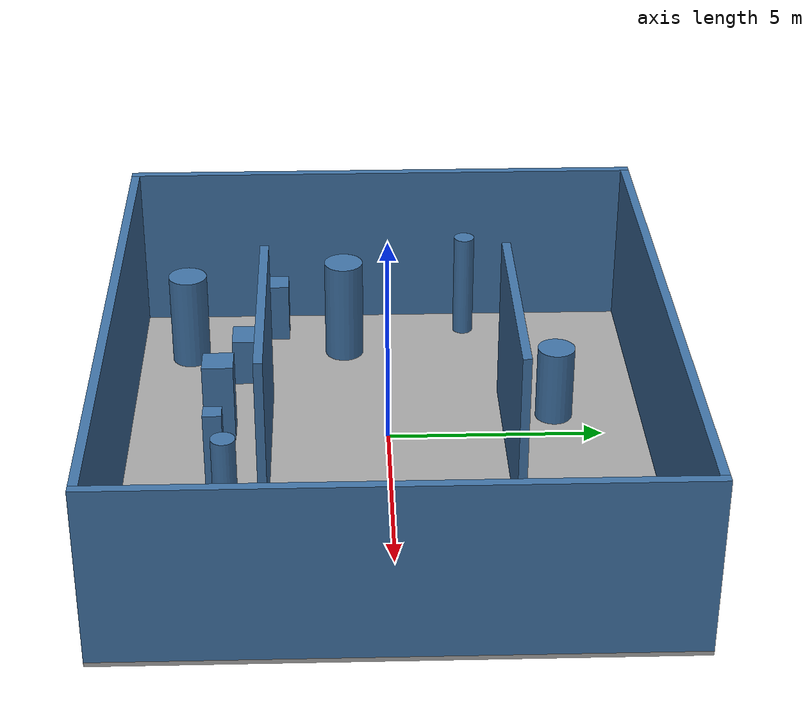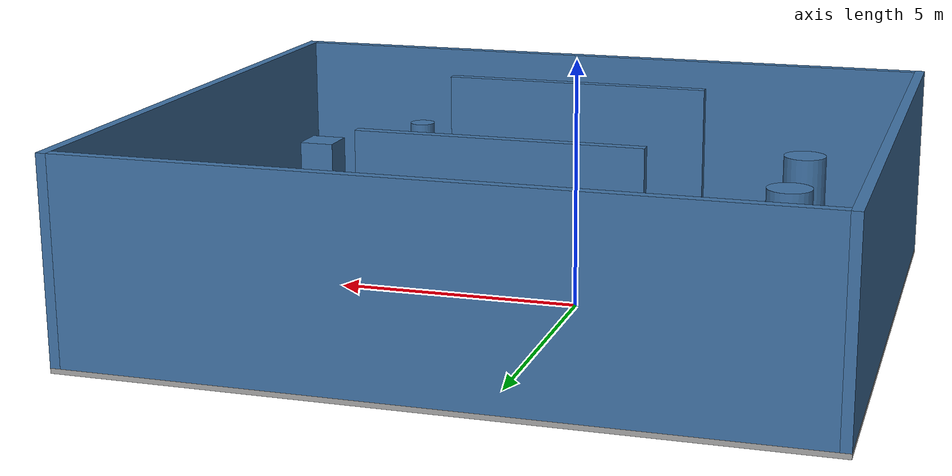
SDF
<?xml version="1.0" encoding="utf-8"?>
<sdf version="1.6">
  <world name="default">
    <gravity>0 0 -9.8</gravity>
    <magnetic_field>6e-06 2.3e-05 -4.2e-05</magnetic_field>
    <physics name="default_physics" type="ode">
      <max_step_size>.001</max_step_size>
      <real_time_factor>1</real_time_factor>
      <real_time_update_rate>1000</real_time_update_rate>
    </physics>
    <scene>
      <ambient>.5 .5 .5 1</ambient>
      <background>.7 .7 .7 1</background>
      <shadows>false</shadows>
    </scene>
    <light name="sun" type="directional">
      <pose>0 0 10 0 0 0</pose>
      <diffuse>.8 .8 .8 1</diffuse>
      <direction>-.2 .1 -1</direction>
    </light>
    <model name="arena_floor">
      <static>true</static>
      <pose>1.000000 0.000000 -0.050000 0.000000 0.000000 0.000000</pose>
      <link name="body">
        <collision name="collision">
          <geometry>
            <box>
              <size>14.400000 12.400000 0.100000</size>
            </box>
          </geometry>
        </collision>
        <visual name="visual">
          <geometry>
            <box>
              <size>14.400000 12.400000 0.100000</size>
            </box>
          </geometry>
          <material>
            <ambient>.65 .65 .65 1</ambient>
            <diffuse>.65 .65 .65 1</diffuse>
          </material>
        </visual>
      </link>
    </model>
    <model name="boundary_west">
      <static>true</static>
      <pose>-6.100000 0.000000 2.000000 0.000000 0.000000 0.000000</pose>
      <link name="body">
        <collision name="collision">
          <geometry>
            <box>
              <size>0.200000 12.400000 4.000000</size>
            </box>
          </geometry>
        </collision>
        <visual name="visual">
          <geometry>
            <box>
              <size>0.200000 12.400000 4.000000</size>
            </box>
          </geometry>
          <material>
            <ambient>.25 .45 .65 1</ambient>
            <diffuse>.25 .45 .65 1</diffuse>
          </material>
        </visual>
      </link>
    </model>
    <model name="boundary_east">
      <static>true</static>
      <pose>8.100000 0.000000 2.000000 0.000000 0.000000 0.000000</pose>
      <link name="body">
        <collision name="collision">
          <geometry>
            <box>
              <size>0.200000 12.400000 4.000000</size>
            </box>
          </geometry>
        </collision>
        <visual name="visual">
          <geometry>
            <box>
              <size>0.200000 12.400000 4.000000</size>
            </box>
          </geometry>
          <material>
            <ambient>.25 .45 .65 1</ambient>
            <diffuse>.25 .45 .65 1</diffuse>
          </material>
        </visual>
      </link>
    </model>
    <model name="boundary_south">
      <static>true</static>
      <pose>1.000000 -6.100000 2.000000 0.000000 0.000000 0.000000</pose>
      <link name="body">
        <collision name="collision">
          <geometry>
            <box>
              <size>14.000000 0.200000 4.000000</size>
            </box>
          </geometry>
        </collision>
        <visual name="visual">
          <geometry>
            <box>
              <size>14.000000 0.200000 4.000000</size>
            </box>
          </geometry>
          <material>
            <ambient>.25 .45 .65 1</ambient>
            <diffuse>.25 .45 .65 1</diffuse>
          </material>
        </visual>
      </link>
    </model>
    <model name="boundary_north">
      <static>true</static>
      <pose>1.000000 6.100000 2.000000 0.000000 0.000000 0.000000</pose>
      <link name="body">
        <collision name="collision">
          <geometry>
            <box>
              <size>14.000000 0.200000 4.000000</size>
            </box>
          </geometry>
        </collision>
        <visual name="visual">
          <geometry>
            <box>
              <size>14.000000 0.200000 4.000000</size>
            </box>
          </geometry>
          <material>
            <ambient>.25 .45 .65 1</ambient>
            <diffuse>.25 .45 .65 1</diffuse>
          </material>
        </visual>
      </link>
    </model>
    <model name="corridor_south">
      <static>true</static>
      <pose>0.750000 -2.800000 2.000000 0.000000 0.000000 0.000000</pose>
      <link name="body">
        <collision name="collision">
          <geometry>
            <box>
              <size>5.500000 0.200000 4.000000</size>
            </box>
          </geometry>
        </collision>
        <visual name="visual">
          <geometry>
            <box>
              <size>5.500000 0.200000 4.000000</size>
            </box>
          </geometry>
          <material>
            <ambient>.25 .45 .65 1</ambient>
            <diffuse>.25 .45 .65 1</diffuse>
          </material>
        </visual>
      </link>
    </model>
    <model name="corridor_north">
      <static>true</static>
      <pose>0.750000 2.800000 2.000000 0.000000 0.000000 0.000000</pose>
      <link name="body">
        <collision name="collision">
          <geometry>
            <box>
              <size>5.500000 0.200000 4.000000</size>
            </box>
          </geometry>
        </collision>
        <visual name="visual">
          <geometry>
            <box>
              <size>5.500000 0.200000 4.000000</size>
            </box>
          </geometry>
          <material>
            <ambient>.25 .45 .65 1</ambient>
            <diffuse>.25 .45 .65 1</diffuse>
          </material>
        </visual>
      </link>
    </model>
    <model name="obstacle_000">
      <static>true</static>
      <pose>5.739000 -0.306000 0.643500 0.000000 0.000000 0.000000</pose>
      <link name="body">
        <collision name="collision">
          <geometry>
            <cylinder>
              <radius>0.227500</radius>
              <length>1.287000</length>
            </cylinder>
          </geometry>
        </collision>
        <visual name="visual">
          <geometry>
            <cylinder>
              <radius>0.227500</radius>
              <length>1.287000</length>
            </cylinder>
          </geometry>
          <material>
            <ambient>.25 .45 .65 1</ambient>
            <diffuse>.25 .45 .65 1</diffuse>
          </material>
        </visual>
      </link>
    </model>
    <model name="obstacle_001">
      <static>true</static>
      <pose>-5.052000 -2.666000 0.740000 0.000000 0.000000 0.000000</pose>
      <link name="body">
        <collision name="collision">
          <geometry>
            <box>
              <size>0.622000 0.622000 1.480000</size>
            </box>
          </geometry>
        </collision>
        <visual name="visual">
          <geometry>
            <box>
              <size>0.622000 0.622000 1.480000</size>
            </box>
          </geometry>
          <material>
            <ambient>.25 .45 .65 1</ambient>
            <diffuse>.25 .45 .65 1</diffuse>
          </material>
        </visual>
      </link>
    </model>
    <model name="obstacle_002">
      <static>true</static>
      <pose>1.861000 -3.919000 0.934500 0.000000 0.000000 0.000000</pose>
      <link name="body">
        <collision name="collision">
          <geometry>
            <box>
              <size>0.422000 0.422000 1.869000</size>
            </box>
          </geometry>
        </collision>
        <visual name="visual">
          <geometry>
            <box>
              <size>0.422000 0.422000 1.869000</size>
            </box>
          </geometry>
          <material>
            <ambient>.25 .45 .65 1</ambient>
            <diffuse>.25 .45 .65 1</diffuse>
          </material>
        </visual>
      </link>
    </model>
    <model name="obstacle_003">
      <static>true</static>
      <pose>6.995000 -3.859000 1.073500 0.000000 0.000000 0.000000</pose>
      <link name="body">
        <collision name="collision">
          <geometry>
            <box>
              <size>0.758000 0.758000 2.147000</size>
            </box>
          </geometry>
        </collision>
        <visual name="visual">
          <geometry>
            <box>
              <size>0.758000 0.758000 2.147000</size>
            </box>
          </geometry>
          <material>
            <ambient>.25 .45 .65 1</ambient>
            <diffuse>.25 .45 .65 1</diffuse>
          </material>
        </visual>
      </link>
    </model>
    <model name="obstacle_004">
      <static>true</static>
      <pose>-5.172000 2.054000 1.300500 0.000000 0.000000 0.000000</pose>
      <link name="body">
        <collision name="collision">
          <geometry>
            <cylinder>
              <radius>0.249000</radius>
              <length>2.601000</length>
            </cylinder>
          </geometry>
        </collision>
        <visual name="visual">
          <geometry>
            <cylinder>
              <radius>0.249000</radius>
              <length>2.601000</length>
            </cylinder>
          </geometry>
          <material>
            <ambient>.25 .45 .65 1</ambient>
            <diffuse>.25 .45 .65 1</diffuse>
          </material>
        </visual>
      </link>
    </model>
    <model name="obstacle_005">
      <static>true</static>
      <pose>4.453000 -3.531000 1.388000 0.000000 0.000000 0.000000</pose>
      <link name="body">
        <collision name="collision">
          <geometry>
            <cylinder>
              <radius>0.262000</radius>
              <length>2.776000</length>
            </cylinder>
          </geometry>
        </collision>
        <visual name="visual">
          <geometry>
            <cylinder>
              <radius>0.262000</radius>
              <length>2.776000</length>
            </cylinder>
          </geometry>
          <material>
            <ambient>.25 .45 .65 1</ambient>
            <diffuse>.25 .45 .65 1</diffuse>
          </material>
        </visual>
      </link>
    </model>
    <model name="obstacle_006">
      <static>true</static>
      <pose>-0.855000 3.952000 0.909500 0.000000 0.000000 0.000000</pose>
      <link name="body">
        <collision name="collision">
          <geometry>
            <cylinder>
              <radius>0.437000</radius>
              <length>1.819000</length>
            </cylinder>
          </geometry>
        </collision>
        <visual name="visual">
          <geometry>
            <cylinder>
              <radius>0.437000</radius>
              <length>1.819000</length>
            </cylinder>
          </geometry>
          <material>
            <ambient>.25 .45 .65 1</ambient>
            <diffuse>.25 .45 .65 1</diffuse>
          </material>
        </visual>
      </link>
    </model>
    <model name="obstacle_007">
      <static>true</static>
      <pose>-3.863000 -4.777000 1.140000 0.000000 0.000000 0.000000</pose>
      <link name="body">
        <collision name="collision">
          <geometry>
            <cylinder>
              <radius>0.462500</radius>
              <length>2.280000</length>
            </cylinder>
          </geometry>
        </collision>
        <visual name="visual">
          <geometry>
            <cylinder>
              <radius>0.462500</radius>
              <length>2.280000</length>
            </cylinder>
          </geometry>
          <material>
            <ambient>.25 .45 .65 1</ambient>
            <diffuse>.25 .45 .65 1</diffuse>
          </material>
        </visual>
      </link>
    </model>
    <model name="obstacle_008">
      <static>true</static>
      <pose>5.732000 4.414000 0.570000 0.000000 0.000000 0.000000</pose>
      <link name="body">
        <collision name="collision">
          <geometry>
            <box>
              <size>0.997000 0.997000 1.140000</size>
            </box>
          </geometry>
        </collision>
        <visual name="visual">
          <geometry>
            <box>
              <size>0.997000 0.997000 1.140000</size>
            </box>
          </geometry>
          <material>
            <ambient>.25 .45 .65 1</ambient>
            <diffuse>.25 .45 .65 1</diffuse>
          </material>
        </visual>
      </link>
    </model>
    <model name="obstacle_009">
      <static>true</static>
      <pose>-2.933000 -3.287000 0.577000 0.000000 0.000000 0.000000</pose>
      <link name="body">
        <collision name="collision">
          <geometry>
            <box>
              <size>0.805000 0.805000 1.154000</size>
            </box>
          </geometry>
        </collision>
        <visual name="visual">
          <geometry>
            <box>
              <size>0.805000 0.805000 1.154000</size>
            </box>
          </geometry>
          <material>
            <ambient>.25 .45 .65 1</ambient>
            <diffuse>.25 .45 .65 1</diffuse>
          </material>
        </visual>
      </link>
    </model>
    <model name="obstacle_010">
      <static>true</static>
      <pose>-4.075000 -0.973000 1.246000 0.000000 0.000000 0.000000</pose>
      <link name="body">
        <collision name="collision">
          <geometry>
            <cylinder>
              <radius>0.467000</radius>
              <length>2.492000</length>
            </cylinder>
          </geometry>
        </collision>
        <visual name="visual">
          <geometry>
            <cylinder>
              <radius>0.467000</radius>
              <length>2.492000</length>
            </cylinder>
          </geometry>
          <material>
            <ambient>.25 .45 .65 1</ambient>
            <diffuse>.25 .45 .65 1</diffuse>
          </material>
        </visual>
      </link>
    </model>
    <model name="obstacle_011">
      <static>true</static>
      <pose>-0.294000 -3.893000 0.963000 0.000000 0.000000 0.000000</pose>
      <link name="body">
        <collision name="collision">
          <geometry>
            <box>
              <size>0.718000 0.718000 1.926000</size>
            </box>
          </geometry>
        </collision>
        <visual name="visual">
          <geometry>
            <box>
              <size>0.718000 0.718000 1.926000</size>
            </box>
          </geometry>
          <material>
            <ambient>.25 .45 .65 1</ambient>
            <diffuse>.25 .45 .65 1</diffuse>
          </material>
        </visual>
      </link>
    </model>
  </world>
</sdf>
